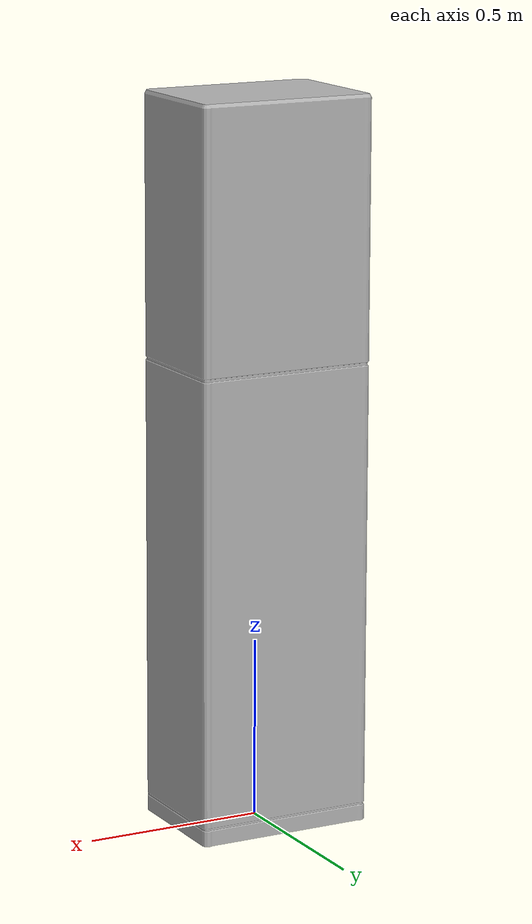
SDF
<?xml version="1.0" ?>
<sdf version="1.6">
  <model name="aws_robomaker_residential_AirconditionerB_01">
    <link name="link">
      <inertial>
        <mass>1.0</mass>
      </inertial>
      <collision name="collision">
        <geometry>
          <mesh>
	  <uri>model://aws_robomaker_residential_AirconditionerB_01/meshes/aws_AirconditionerB_01_collision.DAE</uri>
            <scale>1 1 1</scale>
          </mesh>
        </geometry>
      </collision>
      <visual name="visual">
	    <geometry>
          <mesh>
            <uri>model://aws_robomaker_residential_AirconditionerB_01/meshes/aws_AirconditionerB_01_visual.DAE</uri>
          </mesh>
        </geometry>
      <meta> <layer> 1 </layer></meta>
</visual>
    </link>
  </model>
</sdf>
